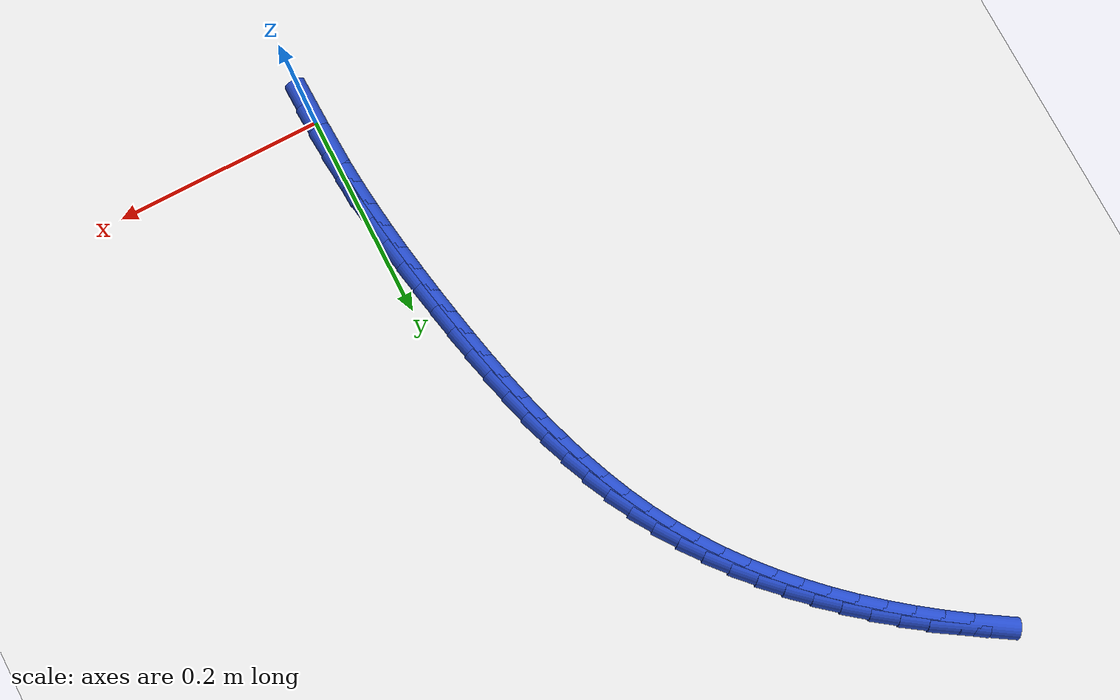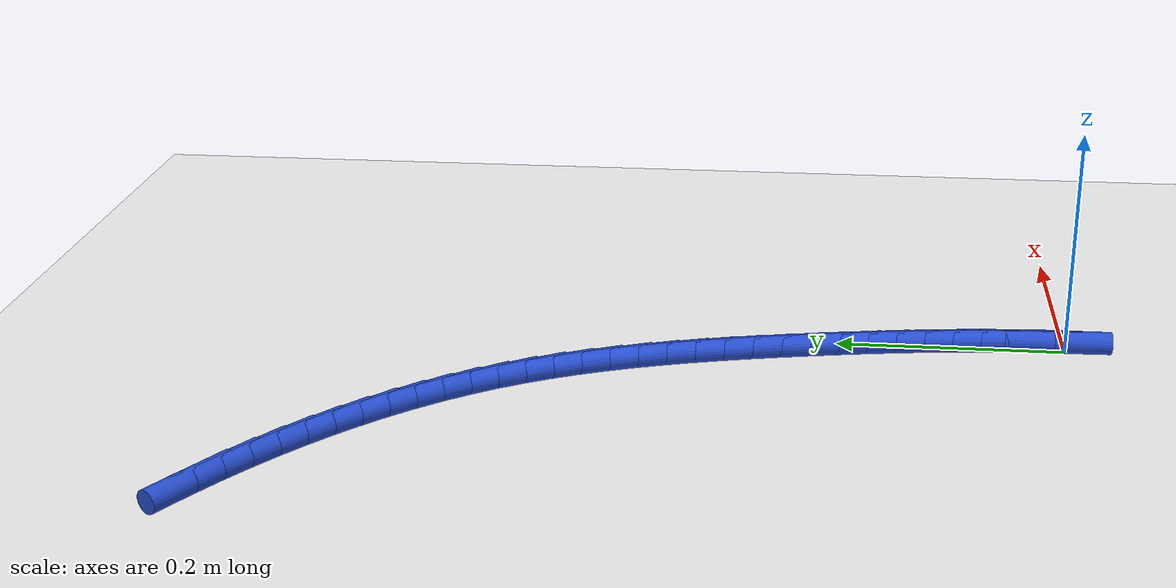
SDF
<sdf version="1.6">
 <world name="default">
  <model name="ground_plane">
   <static>1</static>
   <link name="link">
    <collision name="collision">
     <geometry><plane><normal>0 0 1</normal><size>100 100</size></plane></geometry>
     <surface><friction><ode><mu>100</mu><mu2>50</mu2></ode></friction></surface>
    </collision>
    <visual name="visual">
     <cast_shadows>0</cast_shadows>
     <geometry><plane><normal>0 0 1</normal><size>100 100</size></plane></geometry>
     <material>
      <script><uri>file://media/materials/scripts/gazebo.material</uri><name>Gazebo/WhiteGlow</name></script>
     </material>
    </visual>
   </link>
  </model>
  <model name="line">
   <link name="link_0">
    <pose>-2.168404344971009e-18 -5.551115123125783e-17 0.01 0 1.57 -1.5480476229482256</pose>
    <collision name="collision">
     <geometry><cylinder><radius>0.01</radius><length>0.08</length></cylinder></geometry>
    </collision>
    <visual name="visual">
     <material>
      <script><name>Gazebo/Blue</name><uri>file://media/materials/scripts/gazebo.material</uri></script>
     </material>
     <geometry><cylinder><radius>0.01</radius><length>0.08</length></cylinder></geometry>
    </visual>
   </link>
   <link name="link_1">
    <pose>-0.0005697583295543874 0.025041428558802033 0.01 0 1.57 -1.5206043563029075</pose>
    <collision name="collision">
     <geometry><cylinder><radius>0.01</radius><length>0.08</length></cylinder></geometry>
    </collision>
    <visual name="visual">
     <material>
      <script><name>Gazebo/Blue</name><uri>file://media/materials/scripts/gazebo.material</uri></script>
     </material>
     <geometry><cylinder><radius>0.01</radius><length>0.08</length></cylinder></geometry>
    </visual>
   </link>
   <link name="link_2">
    <pose>-0.0018259961512323243 0.05004906848984471 0.01 0 1.57 -1.495106088449278</pose>
    <collision name="collision">
     <geometry><cylinder><radius>0.01</radius><length>0.08</length></cylinder></geometry>
    </collision>
    <visual name="visual">
     <material>
      <script><name>Gazebo/Blue</name><uri>file://media/materials/scripts/gazebo.material</uri></script>
     </material>
     <geometry><cylinder><radius>0.01</radius><length>0.08</length></cylinder></geometry>
    </visual>
   </link>
   <link name="link_3">
    <pose>-0.0037202982296581553 0.07502828964339595 0.01 0 1.57 -1.4715905317630968</pose>
    <collision name="collision">
     <geometry><cylinder><radius>0.01</radius><length>0.08</length></cylinder></geometry>
    </collision>
    <visual name="visual">
     <material>
      <script><name>Gazebo/Blue</name><uri>file://media/materials/scripts/gazebo.material</uri></script>
     </material>
     <geometry><cylinder><radius>0.01</radius><length>0.08</length></cylinder></geometry>
    </visual>
   </link>
   <link name="link_4">
    <pose>-0.0062042493294562125 0.09998446186972365 0.01 0 1.57 -1.4500802964488242</pose>
    <collision name="collision">
     <geometry><cylinder><radius>0.01</radius><length>0.08</length></cylinder></geometry>
    </collision>
    <visual name="visual">
     <material>
      <script><name>Gazebo/Blue</name><uri>file://media/materials/scripts/gazebo.material</uri></script>
     </material>
     <geometry><cylinder><radius>0.01</radius><length>0.08</length></cylinder></geometry>
    </visual>
   </link>
   <link name="link_5">
    <pose>-0.00922943421525084 0.12492295501909587 0.01 0 1.57 -1.430585549755134</pose>
    <collision name="collision">
     <geometry><cylinder><radius>0.01</radius><length>0.08</length></cylinder></geometry>
    </collision>
    <visual name="visual">
     <material>
      <script><name>Gazebo/Blue</name><uri>file://media/materials/scripts/gazebo.material</uri></script>
     </material>
     <geometry><cylinder><radius>0.01</radius><length>0.08</length></cylinder></geometry>
    </visual>
   </link>
   <link name="link_6">
    <pose>-0.012747437651666377 0.1498491389417805 0.01 0 1.57 -1.4131065929755677</pose>
    <collision name="collision">
     <geometry><cylinder><radius>0.01</radius><length>0.08</length></cylinder></geometry>
    </collision>
    <visual name="visual">
     <material>
      <script><name>Gazebo/Blue</name><uri>file://media/materials/scripts/gazebo.material</uri></script>
     </material>
     <geometry><cylinder><radius>0.01</radius><length>0.08</length></cylinder></geometry>
    </visual>
   </link>
   <link name="link_7">
    <pose>-0.01670984440332716 0.17476838348804563 0.01 0 1.57 -1.3976362624938934</pose>
    <collision name="collision">
     <geometry><cylinder><radius>0.01</radius><length>0.08</length></cylinder></geometry>
    </collision>
    <visual name="visual">
     <material>
      <script><name>Gazebo/Blue</name><uri>file://media/materials/scripts/gazebo.material</uri></script>
     </material>
     <geometry><cylinder><radius>0.01</radius><length>0.08</length></cylinder></geometry>
    </visual>
   </link>
   <link name="link_8">
    <pose>-0.021068239234857525 0.19968605850815904 0.01 0 1.57 -1.3841620944022284</pose>
    <collision name="collision">
     <geometry><cylinder><radius>0.01</radius><length>0.08</length></cylinder></geometry>
    </collision>
    <visual name="visual">
     <material>
      <script><name>Gazebo/Blue</name><uri>file://media/materials/scripts/gazebo.material</uri></script>
     </material>
     <geometry><cylinder><radius>0.01</radius><length>0.08</length></cylinder></geometry>
    </visual>
   </link>
   <link name="link_9">
    <pose>-0.025774206910881812 0.22460753385238882 0.01 0 1.57 -1.3722532291311451</pose>
    <collision name="collision">
     <geometry><cylinder><radius>0.01</radius><length>0.08</length></cylinder></geometry>
    </collision>
    <visual name="visual">
     <material>
      <script><name>Gazebo/Blue</name><uri>file://media/materials/scripts/gazebo.material</uri></script>
     </material>
     <geometry><cylinder><radius>0.01</radius><length>0.08</length></cylinder></geometry>
    </visual>
   </link>
   <link name="link_10">
    <pose>-0.030789064459453584 0.24953305191872024 0.01 0 1.57 -1.3583791332162396</pose>
    <collision name="collision">
     <geometry><cylinder><radius>0.01</radius><length>0.08</length></cylinder></geometry>
    </collision>
    <visual name="visual">
     <material>
      <script><name>Gazebo/Blue</name><uri>file://media/materials/scripts/gazebo.material</uri></script>
     </material>
     <geometry><cylinder><radius>0.01</radius><length>0.08</length></cylinder></geometry>
    </visual>
   </link>
   <link name="link_11">
    <pose>-0.0361563513686778 0.2744195361235322 0.01 0 1.57 -1.3407245242490489</pose>
    <collision name="collision">
     <geometry><cylinder><radius>0.01</radius><length>0.08</length></cylinder></geometry>
    </collision>
    <visual name="visual">
     <material>
      <script><name>Gazebo/Blue</name><uri>file://media/materials/scripts/gazebo.material</uri></script>
     </material>
     <geometry><cylinder><radius>0.01</radius><length>0.08</length></cylinder></geometry>
    </visual>
   </link>
   <link name="link_12">
    <pose>-0.04196091250709101 0.2992021481040733 0.01 0 1.57 -1.3191922778118141</pose>
    <collision name="collision">
     <geometry><cylinder><radius>0.01</radius><length>0.08</length></cylinder></geometry>
    </collision>
    <visual name="visual">
     <material>
      <script><name>Gazebo/Blue</name><uri>file://media/materials/scripts/gazebo.material</uri></script>
     </material>
     <geometry><cylinder><radius>0.01</radius><length>0.08</length></cylinder></geometry>
    </visual>
   </link>
   <link name="link_13">
    <pose>-0.04828790452591961 0.3238158852345849 0.01 0 1.57 -1.2936762294107553</pose>
    <collision name="collision">
     <geometry><cylinder><radius>0.01</radius><length>0.08</length></cylinder></geometry>
    </collision>
    <visual name="visual">
     <material>
      <script><name>Gazebo/Blue</name><uri>file://media/materials/scripts/gazebo.material</uri></script>
     </material>
     <geometry><cylinder><radius>0.01</radius><length>0.08</length></cylinder></geometry>
    </visual>
   </link>
   <link name="link_14">
    <pose>-0.05522248407638997 0.3481957448893078 0.01 0 1.57 -1.2640565944546411</pose>
    <collision name="collision">
     <geometry><cylinder><radius>0.01</radius><length>0.08</length></cylinder></geometry>
    </collision>
    <visual name="visual">
     <material>
      <script><name>Gazebo/Blue</name><uri>file://media/materials/scripts/gazebo.material</uri></script>
     </material>
     <geometry><cylinder><radius>0.01</radius><length>0.08</length></cylinder></geometry>
    </visual>
   </link>
   <link name="link_15">
    <pose>-0.06284980780972839 0.3722767244424827 0.01 0 1.57 -1.2302113667904757</pose>
    <collision name="collision">
     <geometry><cylinder><radius>0.01</radius><length>0.08</length></cylinder></geometry>
    </collision>
    <visual name="visual">
     <material>
      <script><name>Gazebo/Blue</name><uri>file://media/materials/scripts/gazebo.material</uri></script>
     </material>
     <geometry><cylinder><radius>0.01</radius><length>0.08</length></cylinder></geometry>
    </visual>
   </link>
   <link name="link_16">
    <pose>-0.07125503237716127 0.3959938212683509 0.01 0 1.57 -1.19203107122399</pose>
    <collision name="collision">
     <geometry><cylinder><radius>0.01</radius><length>0.08</length></cylinder></geometry>
    </collision>
    <visual name="visual">
     <material>
      <script><name>Gazebo/Blue</name><uri>file://media/materials/scripts/gazebo.material</uri></script>
     </material>
     <geometry><cylinder><radius>0.01</radius><length>0.08</length></cylinder></geometry>
    </visual>
   </link>
   <link name="link_17">
    <pose>-0.08052331442991495 0.41928203274115317 0.01 0 1.57 -1.1494373528756094</pose>
    <collision name="collision">
     <geometry><cylinder><radius>0.01</radius><length>0.08</length></cylinder></geometry>
    </collision>
    <visual name="visual">
     <material>
      <script><name>Gazebo/Blue</name><uri>file://media/materials/scripts/gazebo.material</uri></script>
     </material>
     <geometry><cylinder><radius>0.01</radius><length>0.08</length></cylinder></geometry>
    </visual>
   </link>
   <link name="link_18">
    <pose>-0.09073981061921578 0.44207635623513064 0.01 0 1.57 -1.1024054369803644</pose>
    <collision name="collision">
     <geometry><cylinder><radius>0.01</radius><length>0.08</length></cylinder></geometry>
    </collision>
    <visual name="visual">
     <material>
      <script><name>Gazebo/Blue</name><uri>file://media/materials/scripts/gazebo.material</uri></script>
     </material>
     <geometry><cylinder><radius>0.01</radius><length>0.08</length></cylinder></geometry>
    </visual>
   </link>
   <link name="link_19">
    <pose>-0.10198967759629016 0.4643117891245242 0.01 0 1.57 -1.0512509953364837</pose>
    <collision name="collision">
     <geometry><cylinder><radius>0.01</radius><length>0.08</length></cylinder></geometry>
    </collision>
    <visual name="visual">
     <material>
      <script><name>Gazebo/Blue</name><uri>file://media/materials/scripts/gazebo.material</uri></script>
     </material>
     <geometry><cylinder><radius>0.01</radius><length>0.08</length></cylinder></geometry>
    </visual>
   </link>
   <link name="link_20">
    <pose>-0.11435211894299326 0.4859260258240271 0.01 0 1.57 -0.9996051149049473</pose>
    <collision name="collision">
     <geometry><cylinder><radius>0.01</radius><length>0.08</length></cylinder></geometry>
    </collision>
    <visual name="visual">
     <material>
      <script><name>Gazebo/Blue</name><uri>file://media/materials/scripts/gazebo.material</uri></script>
     </material>
     <geometry><cylinder><radius>0.01</radius><length>0.08</length></cylinder></geometry>
    </visual>
   </link>
   <link name="link_21">
    <pose>-0.12782650793273184 0.5068929279014084 0.01 0 1.57 -0.9500614507901762</pose>
    <collision name="collision">
     <geometry><cylinder><radius>0.01</radius><length>0.08</length></cylinder></geometry>
    </collision>
    <visual name="visual">
     <material>
      <script><name>Gazebo/Blue</name><uri>file://media/materials/scripts/gazebo.material</uri></script>
     </material>
     <geometry><cylinder><radius>0.01</radius><length>0.08</length></cylinder></geometry>
    </visual>
   </link>
   <link name="link_22">
    <pose>-0.142355174116115 0.5272122006057975 0.01 0 1.57 -0.902707804337796</pose>
    <collision name="collision">
     <geometry><cylinder><radius>0.01</radius><length>0.08</length></cylinder></geometry>
    </collision>
    <visual name="visual">
     <material>
      <script><name>Gazebo/Blue</name><uri>file://media/materials/scripts/gazebo.material</uri></script>
     </material>
     <geometry><cylinder><radius>0.01</radius><length>0.08</length></cylinder></geometry>
    </visual>
   </link>
   <link name="link_23">
    <pose>-0.15787921327300253 0.5468841081466531 0.01 0 1.57 -0.8575364275211066</pose>
    <collision name="collision">
     <geometry><cylinder><radius>0.01</radius><length>0.08</length></cylinder></geometry>
    </collision>
    <visual name="visual">
     <material>
      <script><name>Gazebo/Blue</name><uri>file://media/materials/scripts/gazebo.material</uri></script>
     </material>
     <geometry><cylinder><radius>0.01</radius><length>0.08</length></cylinder></geometry>
    </visual>
   </link>
   <link name="link_24">
    <pose>-0.1743397211832544 0.5659089147334343 0.01 0 1.57 -0.814505635361686</pose>
    <collision name="collision">
     <geometry><cylinder><radius>0.01</radius><length>0.08</length></cylinder></geometry>
    </collision>
    <visual name="visual">
     <material>
      <script><name>Gazebo/Blue</name><uri>file://media/materials/scripts/gazebo.material</uri></script>
     </material>
     <geometry><cylinder><radius>0.01</radius><length>0.08</length></cylinder></geometry>
    </visual>
   </link>
   <link name="link_25">
    <pose>-0.19167779362673035 0.5842868845756001 0.01 0 1.57 -0.7735470155147254</pose>
    <collision name="collision">
     <geometry><cylinder><radius>0.01</radius><length>0.08</length></cylinder></geometry>
    </collision>
    <visual name="visual">
     <material>
      <script><name>Gazebo/Blue</name><uri>file://media/materials/scripts/gazebo.material</uri></script>
     </material>
     <geometry><cylinder><radius>0.01</radius><length>0.08</length></cylinder></geometry>
    </visual>
   </link>
   <link name="link_26">
    <pose>-0.2098345263832903 0.6020182818826095 0.01 0 1.57 -0.7345719860970964</pose>
    <collision name="collision">
     <geometry><cylinder><radius>0.01</radius><length>0.08</length></cylinder></geometry>
    </collision>
    <visual name="visual">
     <material>
      <script><name>Gazebo/Blue</name><uri>file://media/materials/scripts/gazebo.material</uri></script>
     </material>
     <geometry><cylinder><radius>0.01</radius><length>0.08</length></cylinder></geometry>
    </visual>
   </link>
   <link name="link_27">
    <pose>-0.22875101523279415 0.6191033708639219 0.01 0 1.57 -0.6974774768604937</pose>
    <collision name="collision">
     <geometry><cylinder><radius>0.01</radius><length>0.08</length></cylinder></geometry>
    </collision>
    <visual name="visual">
     <material>
      <script><name>Gazebo/Blue</name><uri>file://media/materials/scripts/gazebo.material</uri></script>
     </material>
     <geometry><cylinder><radius>0.01</radius><length>0.08</length></cylinder></geometry>
    </visual>
   </link>
   <link name="link_28">
    <pose>-0.2483683559551018 0.6355424157289957 0.01 0 1.57 -0.662150648787534</pose>
    <collision name="collision">
     <geometry><cylinder><radius>0.01</radius><length>0.08</length></cylinder></geometry>
    </collision>
    <visual name="visual">
     <material>
      <script><name>Gazebo/Blue</name><uri>file://media/materials/scripts/gazebo.material</uri></script>
     </material>
     <geometry><cylinder><radius>0.01</radius><length>0.08</length></cylinder></geometry>
    </visual>
   </link>
   <link name="link_29">
    <pose>-0.26862764433007297 0.6513356806872904 0.01 0 1.57 -0.6284726643645151</pose>
    <collision name="collision">
     <geometry><cylinder><radius>0.01</radius><length>0.08</length></cylinder></geometry>
    </collision>
    <visual name="visual">
     <material>
      <script><name>Gazebo/Blue</name><uri>file://media/materials/scripts/gazebo.material</uri></script>
     </material>
     <geometry><cylinder><radius>0.01</radius><length>0.08</length></cylinder></geometry>
    </visual>
   </link>
   <link name="link_30">
    <pose>-0.28946997613756764 0.6664834299482647 0.01 0 1.57 -0.5963215803113437</pose>
    <collision name="collision">
     <geometry><cylinder><radius>0.01</radius><length>0.08</length></cylinder></geometry>
    </collision>
    <visual name="visual">
     <material>
      <script><name>Gazebo/Blue</name><uri>file://media/materials/scripts/gazebo.material</uri></script>
     </material>
     <geometry><cylinder><radius>0.01</radius><length>0.08</length></cylinder></geometry>
    </visual>
   </link>
   <link name="link_31">
    <pose>-0.3108364471574455 0.6809859277213778 0.01 0 1.57 -0.5655744646744059</pose>
    <collision name="collision">
     <geometry><cylinder><radius>0.01</radius><length>0.08</length></cylinder></geometry>
    </collision>
    <visual name="visual">
     <material>
      <script><name>Gazebo/Blue</name><uri>file://media/materials/scripts/gazebo.material</uri></script>
     </material>
     <geometry><cylinder><radius>0.01</radius><length>0.08</length></cylinder></geometry>
    </visual>
   </link>
   <link name="link_271">
    <pose>-0.0005809696258984118 0.02503719110699018 0.01 0 1.57 -1.5174113527890987</pose>
    <collision name="collision">
     <geometry><cylinder><radius>0.01</radius><length>0.08</length></cylinder></geometry>
    </collision>
    <visual name="visual">
     <material>
      <script><name>Gazebo/Blue</name><uri>file://media/materials/scripts/gazebo.material</uri></script>
     </material>
     <geometry><cylinder><radius>0.01</radius><length>0.08</length></cylinder></geometry>
    </visual>
   </link>
   <link name="link_272">
    <pose>-0.0019156865219844173 0.050015168875347835 0.01 0 1.57 -1.5325129302757927</pose>
    <collision name="collision">
     <geometry><cylinder><radius>0.01</radius><length>0.08</length></cylinder></geometry>
    </collision>
    <visual name="visual">
     <material>
      <script><name>Gazebo/Blue</name><uri>file://media/materials/scripts/gazebo.material</uri></script>
     </material>
     <geometry><cylinder><radius>0.01</radius><length>0.08</length></cylinder></geometry>
    </visual>
   </link>
  </model>
 </world>
</sdf>
